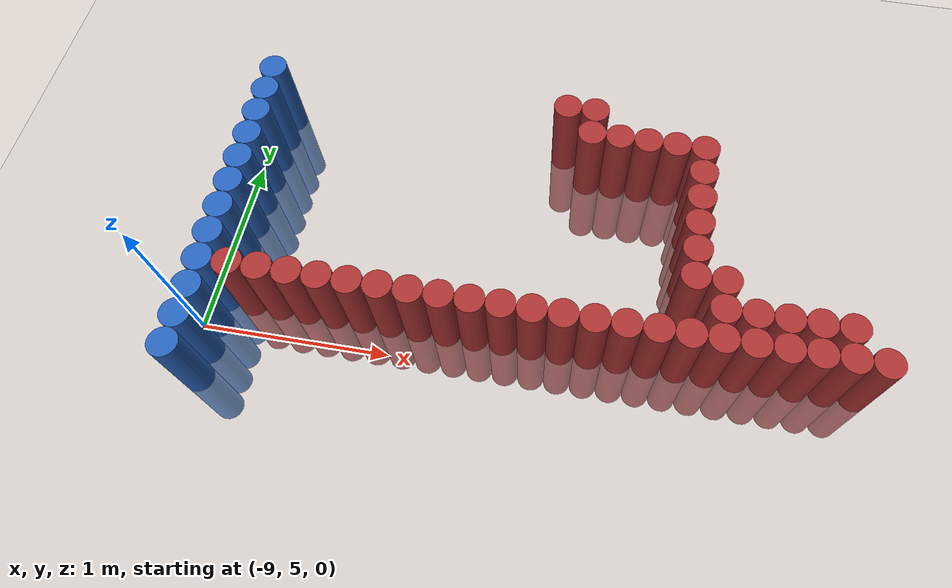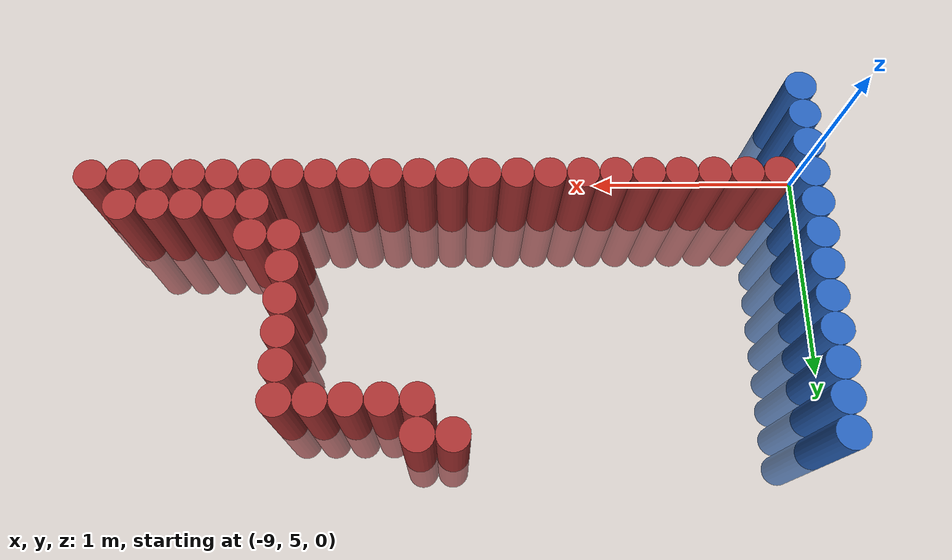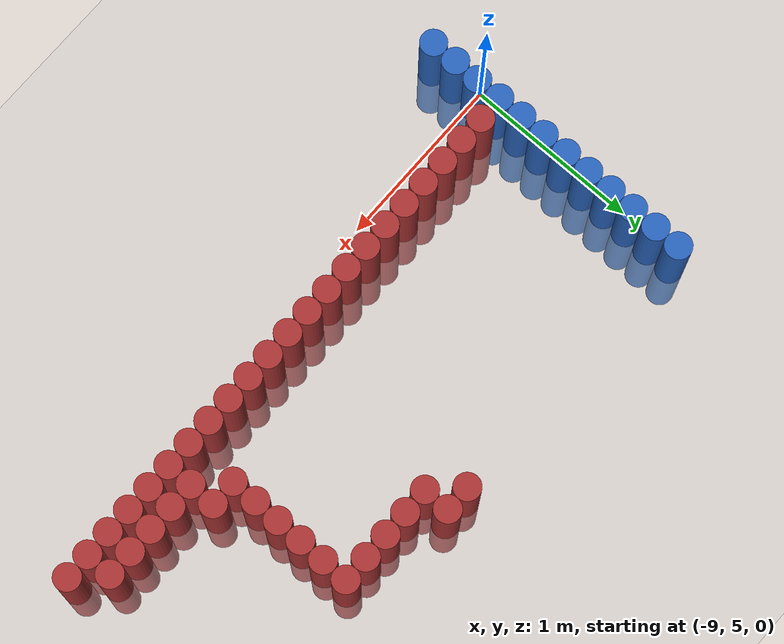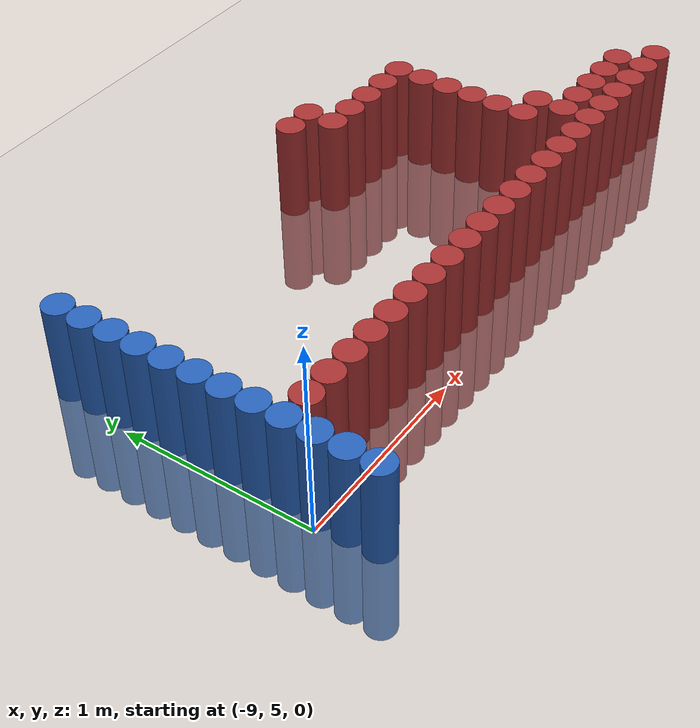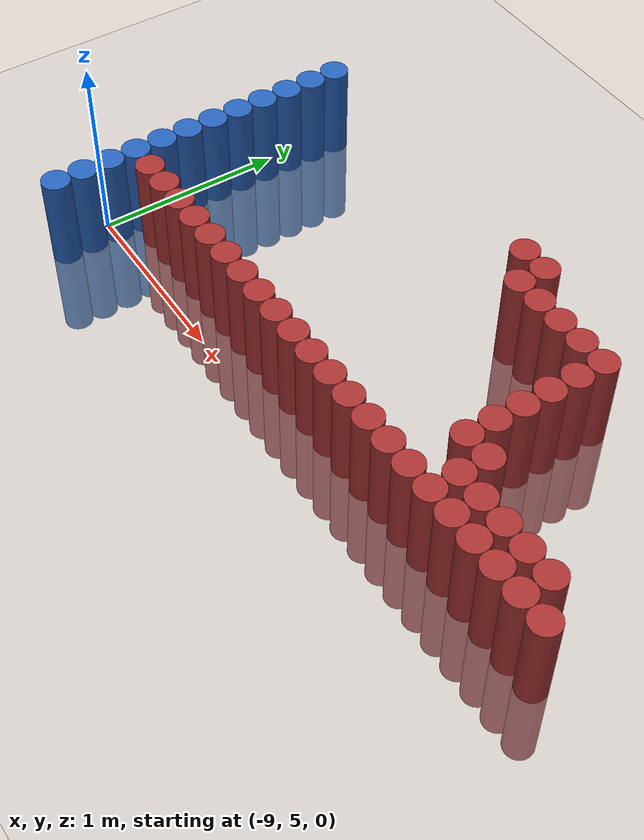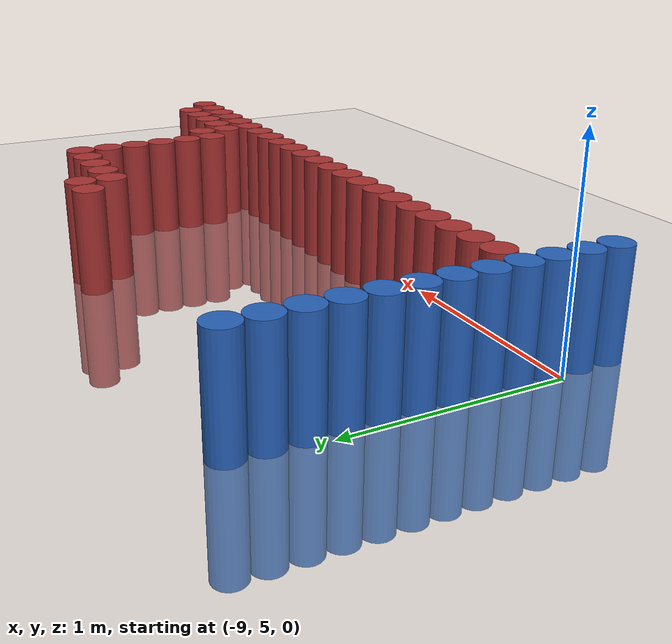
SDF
<sdf version="1.6">
 <world name="default">
  <model name="ground_plane">
   <static>1</static>
   <link name="link">
    <collision name="collision">
     <geometry><plane><normal>0 0 1</normal><size>100 100</size></plane></geometry>
     <surface><friction><ode><mu>100</mu><mu2>50</mu2></ode></friction></surface>
    </collision>
    <visual name="visual">
     <cast_shadows>0</cast_shadows>
     <geometry><plane><normal>0 0 1</normal><size>100 100</size></plane></geometry>
     <material>
      <script><uri>file://media/materials/scripts/gazebo.material</uri><name>Gazebo/Grey</name></script>
     </material>
    </visual>
   </link>
  </model>
  <model name="unit_cylinder_120">
   <static>1</static>
   <pose>-8.925000 4.725000 0.000000 0.000000 0.000000 0.000000</pose>
   <link name="link">
    <inertial>
     <mass>1</mass>
     <inertia><ixx>0.145833</ixx><ixy>0</ixy><ixz>0</ixz><iyy>0.145833</iyy><iyz>0</iyz><izz>0.125</izz></inertia>
    </inertial>
    <collision name="collision">
     <geometry><cylinder><radius>0.075000</radius><length>1</length></cylinder></geometry>
    </collision>
    <visual name="visual">
     <geometry><cylinder><radius>0.075000</radius><length>1</length></cylinder></geometry>
     <material>
      <ambient>0.152000 0.379000 0.720000 1</ambient>
      <diffuse>0.152000 0.379000 0.720000 1</diffuse>
     </material>
     <material>
      <script><name>Gazebo/Grey</name><uri>file://media/materials/scripts/gazebo.material</uri></script>
     </material>
    </visual>
   </link>
  </model>
  <model name="unit_cylinder_122">
   <static>1</static>
   <pose>-8.925000 4.875000 0.000000 0.000000 0.000000 0.000000</pose>
   <link name="link">
    <inertial>
     <mass>1</mass>
     <inertia><ixx>0.145833</ixx><ixy>0</ixy><ixz>0</ixz><iyy>0.145833</iyy><iyz>0</iyz><izz>0.125</izz></inertia>
    </inertial>
    <collision name="collision">
     <geometry><cylinder><radius>0.075000</radius><length>1</length></cylinder></geometry>
    </collision>
    <visual name="visual">
     <geometry><cylinder><radius>0.075000</radius><length>1</length></cylinder></geometry>
     <material>
      <ambient>0.152000 0.379000 0.720000 1</ambient>
      <diffuse>0.152000 0.379000 0.720000 1</diffuse>
     </material>
     <material>
      <script><name>Gazebo/Grey</name><uri>file://media/materials/scripts/gazebo.material</uri></script>
     </material>
    </visual>
   </link>
  </model>
  <model name="unit_cylinder_124">
   <static>1</static>
   <pose>-8.925000 5.025000 0.000000 0.000000 0.000000 0.000000</pose>
   <link name="link">
    <inertial>
     <mass>1</mass>
     <inertia><ixx>0.145833</ixx><ixy>0</ixy><ixz>0</ixz><iyy>0.145833</iyy><iyz>0</iyz><izz>0.125</izz></inertia>
    </inertial>
    <collision name="collision">
     <geometry><cylinder><radius>0.075000</radius><length>1</length></cylinder></geometry>
    </collision>
    <visual name="visual">
     <geometry><cylinder><radius>0.075000</radius><length>1</length></cylinder></geometry>
     <material>
      <ambient>0.152000 0.379000 0.720000 1</ambient>
      <diffuse>0.152000 0.379000 0.720000 1</diffuse>
     </material>
     <material>
      <script><name>Gazebo/Grey</name><uri>file://media/materials/scripts/gazebo.material</uri></script>
     </material>
    </visual>
   </link>
  </model>
  <model name="unit_cylinder_125">
   <static>1</static>
   <pose>-8.925000 5.175000 0.000000 0.000000 0.000000 0.000000</pose>
   <link name="link">
    <inertial>
     <mass>1</mass>
     <inertia><ixx>0.145833</ixx><ixy>0</ixy><ixz>0</ixz><iyy>0.145833</iyy><iyz>0</iyz><izz>0.125</izz></inertia>
    </inertial>
    <collision name="collision">
     <geometry><cylinder><radius>0.075000</radius><length>1</length></cylinder></geometry>
    </collision>
    <visual name="visual">
     <geometry><cylinder><radius>0.075000</radius><length>1</length></cylinder></geometry>
     <material>
      <ambient>0.152000 0.379000 0.720000 1</ambient>
      <diffuse>0.152000 0.379000 0.720000 1</diffuse>
     </material>
     <material>
      <script><name>Gazebo/Grey</name><uri>file://media/materials/scripts/gazebo.material</uri></script>
     </material>
    </visual>
   </link>
  </model>
  <model name="unit_cylinder_126">
   <static>1</static>
   <pose>-8.925000 5.325000 0.000000 0.000000 0.000000 0.000000</pose>
   <link name="link">
    <inertial>
     <mass>1</mass>
     <inertia><ixx>0.145833</ixx><ixy>0</ixy><ixz>0</ixz><iyy>0.145833</iyy><iyz>0</iyz><izz>0.125</izz></inertia>
    </inertial>
    <collision name="collision">
     <geometry><cylinder><radius>0.075000</radius><length>1</length></cylinder></geometry>
    </collision>
    <visual name="visual">
     <geometry><cylinder><radius>0.075000</radius><length>1</length></cylinder></geometry>
     <material>
      <ambient>0.152000 0.379000 0.720000 1</ambient>
      <diffuse>0.152000 0.379000 0.720000 1</diffuse>
     </material>
     <material>
      <script><name>Gazebo/Grey</name><uri>file://media/materials/scripts/gazebo.material</uri></script>
     </material>
    </visual>
   </link>
  </model>
  <model name="unit_cylinder_127">
   <static>1</static>
   <pose>-8.925000 5.475000 0.000000 0.000000 0.000000 0.000000</pose>
   <link name="link">
    <inertial>
     <mass>1</mass>
     <inertia><ixx>0.145833</ixx><ixy>0</ixy><ixz>0</ixz><iyy>0.145833</iyy><iyz>0</iyz><izz>0.125</izz></inertia>
    </inertial>
    <collision name="collision">
     <geometry><cylinder><radius>0.075000</radius><length>1</length></cylinder></geometry>
    </collision>
    <visual name="visual">
     <geometry><cylinder><radius>0.075000</radius><length>1</length></cylinder></geometry>
     <material>
      <ambient>0.152000 0.379000 0.720000 1</ambient>
      <diffuse>0.152000 0.379000 0.720000 1</diffuse>
     </material>
     <material>
      <script><name>Gazebo/Grey</name><uri>file://media/materials/scripts/gazebo.material</uri></script>
     </material>
    </visual>
   </link>
  </model>
  <model name="unit_cylinder_128">
   <static>1</static>
   <pose>-8.925000 5.625000 0.000000 0.000000 0.000000 0.000000</pose>
   <link name="link">
    <inertial>
     <mass>1</mass>
     <inertia><ixx>0.145833</ixx><ixy>0</ixy><ixz>0</ixz><iyy>0.145833</iyy><iyz>0</iyz><izz>0.125</izz></inertia>
    </inertial>
    <collision name="collision">
     <geometry><cylinder><radius>0.075000</radius><length>1</length></cylinder></geometry>
    </collision>
    <visual name="visual">
     <geometry><cylinder><radius>0.075000</radius><length>1</length></cylinder></geometry>
     <material>
      <ambient>0.152000 0.379000 0.720000 1</ambient>
      <diffuse>0.152000 0.379000 0.720000 1</diffuse>
     </material>
     <material>
      <script><name>Gazebo/Grey</name><uri>file://media/materials/scripts/gazebo.material</uri></script>
     </material>
    </visual>
   </link>
  </model>
  <model name="unit_cylinder_129">
   <static>1</static>
   <pose>-8.925000 5.775000 0.000000 0.000000 0.000000 0.000000</pose>
   <link name="link">
    <inertial>
     <mass>1</mass>
     <inertia><ixx>0.145833</ixx><ixy>0</ixy><ixz>0</ixz><iyy>0.145833</iyy><iyz>0</iyz><izz>0.125</izz></inertia>
    </inertial>
    <collision name="collision">
     <geometry><cylinder><radius>0.075000</radius><length>1</length></cylinder></geometry>
    </collision>
    <visual name="visual">
     <geometry><cylinder><radius>0.075000</radius><length>1</length></cylinder></geometry>
     <material>
      <ambient>0.152000 0.379000 0.720000 1</ambient>
      <diffuse>0.152000 0.379000 0.720000 1</diffuse>
     </material>
     <material>
      <script><name>Gazebo/Grey</name><uri>file://media/materials/scripts/gazebo.material</uri></script>
     </material>
    </visual>
   </link>
  </model>
  <model name="unit_cylinder_130">
   <static>1</static>
   <pose>-8.925000 5.925000 0.000000 0.000000 0.000000 0.000000</pose>
   <link name="link">
    <inertial>
     <mass>1</mass>
     <inertia><ixx>0.145833</ixx><ixy>0</ixy><ixz>0</ixz><iyy>0.145833</iyy><iyz>0</iyz><izz>0.125</izz></inertia>
    </inertial>
    <collision name="collision">
     <geometry><cylinder><radius>0.075000</radius><length>1</length></cylinder></geometry>
    </collision>
    <visual name="visual">
     <geometry><cylinder><radius>0.075000</radius><length>1</length></cylinder></geometry>
     <material>
      <ambient>0.152000 0.379000 0.720000 1</ambient>
      <diffuse>0.152000 0.379000 0.720000 1</diffuse>
     </material>
     <material>
      <script><name>Gazebo/Grey</name><uri>file://media/materials/scripts/gazebo.material</uri></script>
     </material>
    </visual>
   </link>
  </model>
  <model name="unit_cylinder_131">
   <static>1</static>
   <pose>-8.925000 6.075000 0.000000 0.000000 0.000000 0.000000</pose>
   <link name="link">
    <inertial>
     <mass>1</mass>
     <inertia><ixx>0.145833</ixx><ixy>0</ixy><ixz>0</ixz><iyy>0.145833</iyy><iyz>0</iyz><izz>0.125</izz></inertia>
    </inertial>
    <collision name="collision">
     <geometry><cylinder><radius>0.075000</radius><length>1</length></cylinder></geometry>
    </collision>
    <visual name="visual">
     <geometry><cylinder><radius>0.075000</radius><length>1</length></cylinder></geometry>
     <material>
      <ambient>0.152000 0.379000 0.720000 1</ambient>
      <diffuse>0.152000 0.379000 0.720000 1</diffuse>
     </material>
     <material>
      <script><name>Gazebo/Grey</name><uri>file://media/materials/scripts/gazebo.material</uri></script>
     </material>
    </visual>
   </link>
  </model>
  <model name="unit_cylinder_132">
   <static>1</static>
   <pose>-8.925000 6.225000 0.000000 0.000000 0.000000 0.000000</pose>
   <link name="link">
    <inertial>
     <mass>1</mass>
     <inertia><ixx>0.145833</ixx><ixy>0</ixy><ixz>0</ixz><iyy>0.145833</iyy><iyz>0</iyz><izz>0.125</izz></inertia>
    </inertial>
    <collision name="collision">
     <geometry><cylinder><radius>0.075000</radius><length>1</length></cylinder></geometry>
    </collision>
    <visual name="visual">
     <geometry><cylinder><radius>0.075000</radius><length>1</length></cylinder></geometry>
     <material>
      <ambient>0.152000 0.379000 0.720000 1</ambient>
      <diffuse>0.152000 0.379000 0.720000 1</diffuse>
     </material>
     <material>
      <script><name>Gazebo/Grey</name><uri>file://media/materials/scripts/gazebo.material</uri></script>
     </material>
    </visual>
   </link>
  </model>
  <model name="unit_cylinder_133">
   <static>1</static>
   <pose>-8.925000 6.375000 0.000000 0.000000 0.000000 0.000000</pose>
   <link name="link">
    <inertial>
     <mass>1</mass>
     <inertia><ixx>0.145833</ixx><ixy>0</ixy><ixz>0</ixz><iyy>0.145833</iyy><iyz>0</iyz><izz>0.125</izz></inertia>
    </inertial>
    <collision name="collision">
     <geometry><cylinder><radius>0.075000</radius><length>1</length></cylinder></geometry>
    </collision>
    <visual name="visual">
     <geometry><cylinder><radius>0.075000</radius><length>1</length></cylinder></geometry>
     <material>
      <ambient>0.152000 0.379000 0.720000 1</ambient>
      <diffuse>0.152000 0.379000 0.720000 1</diffuse>
     </material>
     <material>
      <script><name>Gazebo/Grey</name><uri>file://media/materials/scripts/gazebo.material</uri></script>
     </material>
    </visual>
   </link>
  </model>
  <model name="unit_cylinder_155">
   <static>1</static>
   <pose>-8.775000 5.175000 0.000000 0.000000 0.000000 0.000000</pose>
   <link name="link">
    <inertial>
     <mass>1</mass>
     <inertia><ixx>0.145833</ixx><ixy>0</ixy><ixz>0</ixz><iyy>0.145833</iyy><iyz>0</iyz><izz>0.125</izz></inertia>
    </inertial>
    <collision name="collision">
     <geometry><cylinder><radius>0.075000</radius><length>1</length></cylinder></geometry>
    </collision>
    <visual name="visual">
     <geometry><cylinder><radius>0.075000</radius><length>1</length></cylinder></geometry>
     <material>
      <ambient>0.648000 0.192000 0.192000 1</ambient>
      <diffuse>0.648000 0.192000 0.192000 1</diffuse>
     </material>
     <material>
      <script><name>Gazebo/Grey</name><uri>file://media/materials/scripts/gazebo.material</uri></script>
     </material>
    </visual>
   </link>
  </model>
  <model name="unit_cylinder_157">
   <static>1</static>
   <pose>-8.625000 5.175000 0.000000 0.000000 0.000000 0.000000</pose>
   <link name="link">
    <inertial>
     <mass>1</mass>
     <inertia><ixx>0.145833</ixx><ixy>0</ixy><ixz>0</ixz><iyy>0.145833</iyy><iyz>0</iyz><izz>0.125</izz></inertia>
    </inertial>
    <collision name="collision">
     <geometry><cylinder><radius>0.075000</radius><length>1</length></cylinder></geometry>
    </collision>
    <visual name="visual">
     <geometry><cylinder><radius>0.075000</radius><length>1</length></cylinder></geometry>
     <material>
      <ambient>0.648000 0.192000 0.192000 1</ambient>
      <diffuse>0.648000 0.192000 0.192000 1</diffuse>
     </material>
     <material>
      <script><name>Gazebo/Grey</name><uri>file://media/materials/scripts/gazebo.material</uri></script>
     </material>
    </visual>
   </link>
  </model>
  <model name="unit_cylinder_159">
   <static>1</static>
   <pose>-8.475000 5.175000 0.000000 0.000000 0.000000 0.000000</pose>
   <link name="link">
    <inertial>
     <mass>1</mass>
     <inertia><ixx>0.145833</ixx><ixy>0</ixy><ixz>0</ixz><iyy>0.145833</iyy><iyz>0</iyz><izz>0.125</izz></inertia>
    </inertial>
    <collision name="collision">
     <geometry><cylinder><radius>0.075000</radius><length>1</length></cylinder></geometry>
    </collision>
    <visual name="visual">
     <geometry><cylinder><radius>0.075000</radius><length>1</length></cylinder></geometry>
     <material>
      <ambient>0.648000 0.192000 0.192000 1</ambient>
      <diffuse>0.648000 0.192000 0.192000 1</diffuse>
     </material>
     <material>
      <script><name>Gazebo/Grey</name><uri>file://media/materials/scripts/gazebo.material</uri></script>
     </material>
    </visual>
   </link>
  </model>
  <model name="unit_cylinder_161">
   <static>1</static>
   <pose>-8.325000 5.175000 0.000000 0.000000 0.000000 0.000000</pose>
   <link name="link">
    <inertial>
     <mass>1</mass>
     <inertia><ixx>0.145833</ixx><ixy>0</ixy><ixz>0</ixz><iyy>0.145833</iyy><iyz>0</iyz><izz>0.125</izz></inertia>
    </inertial>
    <collision name="collision">
     <geometry><cylinder><radius>0.075000</radius><length>1</length></cylinder></geometry>
    </collision>
    <visual name="visual">
     <geometry><cylinder><radius>0.075000</radius><length>1</length></cylinder></geometry>
     <material>
      <ambient>0.648000 0.192000 0.192000 1</ambient>
      <diffuse>0.648000 0.192000 0.192000 1</diffuse>
     </material>
     <material>
      <script><name>Gazebo/Grey</name><uri>file://media/materials/scripts/gazebo.material</uri></script>
     </material>
    </visual>
   </link>
  </model>
  <model name="unit_cylinder_163">
   <static>1</static>
   <pose>-8.175000 5.175000 0.000000 0.000000 0.000000 0.000000</pose>
   <link name="link">
    <inertial>
     <mass>1</mass>
     <inertia><ixx>0.145833</ixx><ixy>0</ixy><ixz>0</ixz><iyy>0.145833</iyy><iyz>0</iyz><izz>0.125</izz></inertia>
    </inertial>
    <collision name="collision">
     <geometry><cylinder><radius>0.075000</radius><length>1</length></cylinder></geometry>
    </collision>
    <visual name="visual">
     <geometry><cylinder><radius>0.075000</radius><length>1</length></cylinder></geometry>
     <material>
      <ambient>0.648000 0.192000 0.192000 1</ambient>
      <diffuse>0.648000 0.192000 0.192000 1</diffuse>
     </material>
     <material>
      <script><name>Gazebo/Grey</name><uri>file://media/materials/scripts/gazebo.material</uri></script>
     </material>
    </visual>
   </link>
  </model>
  <model name="unit_cylinder_165">
   <static>1</static>
   <pose>-8.025000 5.175000 0.000000 0.000000 0.000000 0.000000</pose>
   <link name="link">
    <inertial>
     <mass>1</mass>
     <inertia><ixx>0.145833</ixx><ixy>0</ixy><ixz>0</ixz><iyy>0.145833</iyy><iyz>0</iyz><izz>0.125</izz></inertia>
    </inertial>
    <collision name="collision">
     <geometry><cylinder><radius>0.075000</radius><length>1</length></cylinder></geometry>
    </collision>
    <visual name="visual">
     <geometry><cylinder><radius>0.075000</radius><length>1</length></cylinder></geometry>
     <material>
      <ambient>0.648000 0.192000 0.192000 1</ambient>
      <diffuse>0.648000 0.192000 0.192000 1</diffuse>
     </material>
     <material>
      <script><name>Gazebo/Grey</name><uri>file://media/materials/scripts/gazebo.material</uri></script>
     </material>
    </visual>
   </link>
  </model>
  <model name="unit_cylinder_167">
   <static>1</static>
   <pose>-7.875000 5.175000 0.000000 0.000000 0.000000 0.000000</pose>
   <link name="link">
    <inertial>
     <mass>1</mass>
     <inertia><ixx>0.145833</ixx><ixy>0</ixy><ixz>0</ixz><iyy>0.145833</iyy><iyz>0</iyz><izz>0.125</izz></inertia>
    </inertial>
    <collision name="collision">
     <geometry><cylinder><radius>0.075000</radius><length>1</length></cylinder></geometry>
    </collision>
    <visual name="visual">
     <geometry><cylinder><radius>0.075000</radius><length>1</length></cylinder></geometry>
     <material>
      <ambient>0.648000 0.192000 0.192000 1</ambient>
      <diffuse>0.648000 0.192000 0.192000 1</diffuse>
     </material>
     <material>
      <script><name>Gazebo/Grey</name><uri>file://media/materials/scripts/gazebo.material</uri></script>
     </material>
    </visual>
   </link>
  </model>
  <model name="unit_cylinder_169">
   <static>1</static>
   <pose>-7.725000 5.175000 0.000000 0.000000 0.000000 0.000000</pose>
   <link name="link">
    <inertial>
     <mass>1</mass>
     <inertia><ixx>0.145833</ixx><ixy>0</ixy><ixz>0</ixz><iyy>0.145833</iyy><iyz>0</iyz><izz>0.125</izz></inertia>
    </inertial>
    <collision name="collision">
     <geometry><cylinder><radius>0.075000</radius><length>1</length></cylinder></geometry>
    </collision>
    <visual name="visual">
     <geometry><cylinder><radius>0.075000</radius><length>1</length></cylinder></geometry>
     <material>
      <ambient>0.648000 0.192000 0.192000 1</ambient>
      <diffuse>0.648000 0.192000 0.192000 1</diffuse>
     </material>
     <material>
      <script><name>Gazebo/Grey</name><uri>file://media/materials/scripts/gazebo.material</uri></script>
     </material>
    </visual>
   </link>
  </model>
  <model name="unit_cylinder_186">
   <static>1</static>
   <pose>-7.575000 5.175000 0.000000 0.000000 0.000000 0.000000</pose>
   <link name="link">
    <inertial>
     <mass>1</mass>
     <inertia><ixx>0.145833</ixx><ixy>0</ixy><ixz>0</ixz><iyy>0.145833</iyy><iyz>0</iyz><izz>0.125</izz></inertia>
    </inertial>
    <collision name="collision">
     <geometry><cylinder><radius>0.075000</radius><length>1</length></cylinder></geometry>
    </collision>
    <visual name="visual">
     <geometry><cylinder><radius>0.075000</radius><length>1</length></cylinder></geometry>
     <material>
      <ambient>0.648000 0.192000 0.192000 1</ambient>
      <diffuse>0.648000 0.192000 0.192000 1</diffuse>
     </material>
     <material>
      <script><name>Gazebo/Grey</name><uri>file://media/materials/scripts/gazebo.material</uri></script>
     </material>
    </visual>
   </link>
  </model>
  <model name="unit_cylinder_190">
   <static>1</static>
   <pose>-7.425000 5.175000 0.000000 0.000000 0.000000 0.000000</pose>
   <link name="link">
    <inertial>
     <mass>1</mass>
     <inertia><ixx>0.145833</ixx><ixy>0</ixy><ixz>0</ixz><iyy>0.145833</iyy><iyz>0</iyz><izz>0.125</izz></inertia>
    </inertial>
    <collision name="collision">
     <geometry><cylinder><radius>0.075000</radius><length>1</length></cylinder></geometry>
    </collision>
    <visual name="visual">
     <geometry><cylinder><radius>0.075000</radius><length>1</length></cylinder></geometry>
     <material>
      <ambient>0.648000 0.192000 0.192000 1</ambient>
      <diffuse>0.648000 0.192000 0.192000 1</diffuse>
     </material>
     <material>
      <script><name>Gazebo/Grey</name><uri>file://media/materials/scripts/gazebo.material</uri></script>
     </material>
    </visual>
   </link>
  </model>
  <model name="unit_cylinder_193">
   <static>1</static>
   <pose>-7.275000 5.175000 0.000000 0.000000 0.000000 0.000000</pose>
   <link name="link">
    <inertial>
     <mass>1</mass>
     <inertia><ixx>0.145833</ixx><ixy>0</ixy><ixz>0</ixz><iyy>0.145833</iyy><iyz>0</iyz><izz>0.125</izz></inertia>
    </inertial>
    <collision name="collision">
     <geometry><cylinder><radius>0.075000</radius><length>1</length></cylinder></geometry>
    </collision>
    <visual name="visual">
     <geometry><cylinder><radius>0.075000</radius><length>1</length></cylinder></geometry>
     <material>
      <ambient>0.648000 0.192000 0.192000 1</ambient>
      <diffuse>0.648000 0.192000 0.192000 1</diffuse>
     </material>
     <material>
      <script><name>Gazebo/Grey</name><uri>file://media/materials/scripts/gazebo.material</uri></script>
     </material>
    </visual>
   </link>
  </model>
  <model name="unit_cylinder_194">
   <static>1</static>
   <pose>-7.275000 6.375000 0.000000 0.000000 0.000000 0.000000</pose>
   <link name="link">
    <inertial>
     <mass>1</mass>
     <inertia><ixx>0.145833</ixx><ixy>0</ixy><ixz>0</ixz><iyy>0.145833</iyy><iyz>0</iyz><izz>0.125</izz></inertia>
    </inertial>
    <collision name="collision">
     <geometry><cylinder><radius>0.075000</radius><length>1</length></cylinder></geometry>
    </collision>
    <visual name="visual">
     <geometry><cylinder><radius>0.075000</radius><length>1</length></cylinder></geometry>
     <material>
      <ambient>0.648000 0.192000 0.192000 1</ambient>
      <diffuse>0.648000 0.192000 0.192000 1</diffuse>
     </material>
     <material>
      <script><name>Gazebo/Grey</name><uri>file://media/materials/scripts/gazebo.material</uri></script>
     </material>
    </visual>
   </link>
  </model>
  <model name="unit_cylinder_198">
   <static>1</static>
   <pose>-7.125000 5.175000 0.000000 0.000000 0.000000 0.000000</pose>
   <link name="link">
    <inertial>
     <mass>1</mass>
     <inertia><ixx>0.145833</ixx><ixy>0</ixy><ixz>0</ixz><iyy>0.145833</iyy><iyz>0</iyz><izz>0.125</izz></inertia>
    </inertial>
    <collision name="collision">
     <geometry><cylinder><radius>0.075000</radius><length>1</length></cylinder></geometry>
    </collision>
    <visual name="visual">
     <geometry><cylinder><radius>0.075000</radius><length>1</length></cylinder></geometry>
     <material>
      <ambient>0.648000 0.192000 0.192000 1</ambient>
      <diffuse>0.648000 0.192000 0.192000 1</diffuse>
     </material>
     <material>
      <script><name>Gazebo/Grey</name><uri>file://media/materials/scripts/gazebo.material</uri></script>
     </material>
    </visual>
   </link>
  </model>
  <model name="unit_cylinder_199">
   <static>1</static>
   <pose>-7.125000 6.225000 0.000000 0.000000 0.000000 0.000000</pose>
   <link name="link">
    <inertial>
     <mass>1</mass>
     <inertia><ixx>0.145833</ixx><ixy>0</ixy><ixz>0</ixz><iyy>0.145833</iyy><iyz>0</iyz><izz>0.125</izz></inertia>
    </inertial>
    <collision name="collision">
     <geometry><cylinder><radius>0.075000</radius><length>1</length></cylinder></geometry>
    </collision>
    <visual name="visual">
     <geometry><cylinder><radius>0.075000</radius><length>1</length></cylinder></geometry>
     <material>
      <ambient>0.648000 0.192000 0.192000 1</ambient>
      <diffuse>0.648000 0.192000 0.192000 1</diffuse>
     </material>
     <material>
      <script><name>Gazebo/Grey</name><uri>file://media/materials/scripts/gazebo.material</uri></script>
     </material>
    </visual>
   </link>
  </model>
  <model name="unit_cylinder_200">
   <static>1</static>
   <pose>-7.125000 6.375000 0.000000 0.000000 0.000000 0.000000</pose>
   <link name="link">
    <inertial>
     <mass>1</mass>
     <inertia><ixx>0.145833</ixx><ixy>0</ixy><ixz>0</ixz><iyy>0.145833</iyy><iyz>0</iyz><izz>0.125</izz></inertia>
    </inertial>
    <collision name="collision">
     <geometry><cylinder><radius>0.075000</radius><length>1</length></cylinder></geometry>
    </collision>
    <visual name="visual">
     <geometry><cylinder><radius>0.075000</radius><length>1</length></cylinder></geometry>
     <material>
      <ambient>0.648000 0.192000 0.192000 1</ambient>
      <diffuse>0.648000 0.192000 0.192000 1</diffuse>
     </material>
     <material>
      <script><name>Gazebo/Grey</name><uri>file://media/materials/scripts/gazebo.material</uri></script>
     </material>
    </visual>
   </link>
  </model>
  <model name="unit_cylinder_201">
   <static>1</static>
   <pose>-6.975000 5.175000 0.000000 0.000000 0.000000 0.000000</pose>
   <link name="link">
    <inertial>
     <mass>1</mass>
     <inertia><ixx>0.145833</ixx><ixy>0</ixy><ixz>0</ixz><iyy>0.145833</iyy><iyz>0</iyz><izz>0.125</izz></inertia>
    </inertial>
    <collision name="collision">
     <geometry><cylinder><radius>0.075000</radius><length>1</length></cylinder></geometry>
    </collision>
    <visual name="visual">
     <geometry><cylinder><radius>0.075000</radius><length>1</length></cylinder></geometry>
     <material>
      <ambient>0.648000 0.192000 0.192000 1</ambient>
      <diffuse>0.648000 0.192000 0.192000 1</diffuse>
     </material>
     <material>
      <script><name>Gazebo/Grey</name><uri>file://media/materials/scripts/gazebo.material</uri></script>
     </material>
    </visual>
   </link>
  </model>
  <model name="unit_cylinder_202">
   <static>1</static>
   <pose>-6.975000 6.225000 0.000000 0.000000 0.000000 0.000000</pose>
   <link name="link">
    <inertial>
     <mass>1</mass>
     <inertia><ixx>0.145833</ixx><ixy>0</ixy><ixz>0</ixz><iyy>0.145833</iyy><iyz>0</iyz><izz>0.125</izz></inertia>
    </inertial>
    <collision name="collision">
     <geometry><cylinder><radius>0.075000</radius><length>1</length></cylinder></geometry>
    </collision>
    <visual name="visual">
     <geometry><cylinder><radius>0.075000</radius><length>1</length></cylinder></geometry>
     <material>
      <ambient>0.648000 0.192000 0.192000 1</ambient>
      <diffuse>0.648000 0.192000 0.192000 1</diffuse>
     </material>
     <material>
      <script><name>Gazebo/Grey</name><uri>file://media/materials/scripts/gazebo.material</uri></script>
     </material>
    </visual>
   </link>
  </model>
  <model name="unit_cylinder_203">
   <static>1</static>
   <pose>-6.825000 5.175000 0.000000 0.000000 0.000000 0.000000</pose>
   <link name="link">
    <inertial>
     <mass>1</mass>
     <inertia><ixx>0.145833</ixx><ixy>0</ixy><ixz>0</ixz><iyy>0.145833</iyy><iyz>0</iyz><izz>0.125</izz></inertia>
    </inertial>
    <collision name="collision">
     <geometry><cylinder><radius>0.075000</radius><length>1</length></cylinder></geometry>
    </collision>
    <visual name="visual">
     <geometry><cylinder><radius>0.075000</radius><length>1</length></cylinder></geometry>
     <material>
      <ambient>0.648000 0.192000 0.192000 1</ambient>
      <diffuse>0.648000 0.192000 0.192000 1</diffuse>
     </material>
     <material>
      <script><name>Gazebo/Grey</name><uri>file://media/materials/scripts/gazebo.material</uri></script>
     </material>
    </visual>
   </link>
  </model>
  <model name="unit_cylinder_204">
   <static>1</static>
   <pose>-6.825000 6.225000 0.000000 0.000000 0.000000 0.000000</pose>
   <link name="link">
    <inertial>
     <mass>1</mass>
     <inertia><ixx>0.145833</ixx><ixy>0</ixy><ixz>0</ixz><iyy>0.145833</iyy><iyz>0</iyz><izz>0.125</izz></inertia>
    </inertial>
    <collision name="collision">
     <geometry><cylinder><radius>0.075000</radius><length>1</length></cylinder></geometry>
    </collision>
    <visual name="visual">
     <geometry><cylinder><radius>0.075000</radius><length>1</length></cylinder></geometry>
     <material>
      <ambient>0.648000 0.192000 0.192000 1</ambient>
      <diffuse>0.648000 0.192000 0.192000 1</diffuse>
     </material>
     <material>
      <script><name>Gazebo/Grey</name><uri>file://media/materials/scripts/gazebo.material</uri></script>
     </material>
    </visual>
   </link>
  </model>
  <model name="unit_cylinder_205">
   <static>1</static>
   <pose>-6.675000 5.175000 0.000000 0.000000 0.000000 0.000000</pose>
   <link name="link">
    <inertial>
     <mass>1</mass>
     <inertia><ixx>0.145833</ixx><ixy>0</ixy><ixz>0</ixz><iyy>0.145833</iyy><iyz>0</iyz><izz>0.125</izz></inertia>
    </inertial>
    <collision name="collision">
     <geometry><cylinder><radius>0.075000</radius><length>1</length></cylinder></geometry>
    </collision>
    <visual name="visual">
     <geometry><cylinder><radius>0.075000</radius><length>1</length></cylinder></geometry>
     <material>
      <ambient>0.648000 0.192000 0.192000 1</ambient>
      <diffuse>0.648000 0.192000 0.192000 1</diffuse>
     </material>
     <material>
      <script><name>Gazebo/Grey</name><uri>file://media/materials/scripts/gazebo.material</uri></script>
     </material>
    </visual>
   </link>
  </model>
  <model name="unit_cylinder_206">
   <static>1</static>
   <pose>-6.675000 6.225000 0.000000 0.000000 0.000000 0.000000</pose>
   <link name="link">
    <inertial>
     <mass>1</mass>
     <inertia><ixx>0.145833</ixx><ixy>0</ixy><ixz>0</ixz><iyy>0.145833</iyy><iyz>0</iyz><izz>0.125</izz></inertia>
    </inertial>
    <collision name="collision">
     <geometry><cylinder><radius>0.075000</radius><length>1</length></cylinder></geometry>
    </collision>
    <visual name="visual">
     <geometry><cylinder><radius>0.075000</radius><length>1</length></cylinder></geometry>
     <material>
      <ambient>0.648000 0.192000 0.192000 1</ambient>
      <diffuse>0.648000 0.192000 0.192000 1</diffuse>
     </material>
     <material>
      <script><name>Gazebo/Grey</name><uri>file://media/materials/scripts/gazebo.material</uri></script>
     </material>
    </visual>
   </link>
  </model>
  <model name="unit_cylinder_207">
   <static>1</static>
   <pose>-6.525000 5.175000 0.000000 0.000000 0.000000 0.000000</pose>
   <link name="link">
    <inertial>
     <mass>1</mass>
     <inertia><ixx>0.145833</ixx><ixy>0</ixy><ixz>0</ixz><iyy>0.145833</iyy><iyz>0</iyz><izz>0.125</izz></inertia>
    </inertial>
    <collision name="collision">
     <geometry><cylinder><radius>0.075000</radius><length>1</length></cylinder></geometry>
    </collision>
    <visual name="visual">
     <geometry><cylinder><radius>0.075000</radius><length>1</length></cylinder></geometry>
     <material>
      <ambient>0.648000 0.192000 0.192000 1</ambient>
      <diffuse>0.648000 0.192000 0.192000 1</diffuse>
     </material>
     <material>
      <script><name>Gazebo/Grey</name><uri>file://media/materials/scripts/gazebo.material</uri></script>
     </material>
    </visual>
   </link>
  </model>
  <model name="unit_cylinder_208">
   <static>1</static>
   <pose>-6.525000 5.475000 0.000000 0.000000 0.000000 0.000000</pose>
   <link name="link">
    <inertial>
     <mass>1</mass>
     <inertia><ixx>0.145833</ixx><ixy>0</ixy><ixz>0</ixz><iyy>0.145833</iyy><iyz>0</iyz><izz>0.125</izz></inertia>
    </inertial>
    <collision name="collision">
     <geometry><cylinder><radius>0.075000</radius><length>1</length></cylinder></geometry>
    </collision>
    <visual name="visual">
     <geometry><cylinder><radius>0.075000</radius><length>1</length></cylinder></geometry>
     <material>
      <ambient>0.648000 0.192000 0.192000 1</ambient>
      <diffuse>0.648000 0.192000 0.192000 1</diffuse>
     </material>
     <material>
      <script><name>Gazebo/Grey</name><uri>file://media/materials/scripts/gazebo.material</uri></script>
     </material>
    </visual>
   </link>
  </model>
  <model name="unit_cylinder_209">
   <static>1</static>
   <pose>-6.525000 5.625000 0.000000 0.000000 0.000000 0.000000</pose>
   <link name="link">
    <inertial>
     <mass>1</mass>
     <inertia><ixx>0.145833</ixx><ixy>0</ixy><ixz>0</ixz><iyy>0.145833</iyy><iyz>0</iyz><izz>0.125</izz></inertia>
    </inertial>
    <collision name="collision">
     <geometry><cylinder><radius>0.075000</radius><length>1</length></cylinder></geometry>
    </collision>
    <visual name="visual">
     <geometry><cylinder><radius>0.075000</radius><length>1</length></cylinder></geometry>
     <material>
      <ambient>0.648000 0.192000 0.192000 1</ambient>
      <diffuse>0.648000 0.192000 0.192000 1</diffuse>
     </material>
     <material>
      <script><name>Gazebo/Grey</name><uri>file://media/materials/scripts/gazebo.material</uri></script>
     </material>
    </visual>
   </link>
  </model>
  <model name="unit_cylinder_210">
   <static>1</static>
   <pose>-6.525000 5.775000 0.000000 0.000000 0.000000 0.000000</pose>
   <link name="link">
    <inertial>
     <mass>1</mass>
     <inertia><ixx>0.145833</ixx><ixy>0</ixy><ixz>0</ixz><iyy>0.145833</iyy><iyz>0</iyz><izz>0.125</izz></inertia>
    </inertial>
    <collision name="collision">
     <geometry><cylinder><radius>0.075000</radius><length>1</length></cylinder></geometry>
    </collision>
    <visual name="visual">
     <geometry><cylinder><radius>0.075000</radius><length>1</length></cylinder></geometry>
     <material>
      <ambient>0.648000 0.192000 0.192000 1</ambient>
      <diffuse>0.648000 0.192000 0.192000 1</diffuse>
     </material>
     <material>
      <script><name>Gazebo/Grey</name><uri>file://media/materials/scripts/gazebo.material</uri></script>
     </material>
    </visual>
   </link>
  </model>
  <model name="unit_cylinder_211">
   <static>1</static>
   <pose>-6.525000 5.925000 0.000000 0.000000 0.000000 0.000000</pose>
   <link name="link">
    <inertial>
     <mass>1</mass>
     <inertia><ixx>0.145833</ixx><ixy>0</ixy><ixz>0</ixz><iyy>0.145833</iyy><iyz>0</iyz><izz>0.125</izz></inertia>
    </inertial>
    <collision name="collision">
     <geometry><cylinder><radius>0.075000</radius><length>1</length></cylinder></geometry>
    </collision>
    <visual name="visual">
     <geometry><cylinder><radius>0.075000</radius><length>1</length></cylinder></geometry>
     <material>
      <ambient>0.648000 0.192000 0.192000 1</ambient>
      <diffuse>0.648000 0.192000 0.192000 1</diffuse>
     </material>
     <material>
      <script><name>Gazebo/Grey</name><uri>file://media/materials/scripts/gazebo.material</uri></script>
     </material>
    </visual>
   </link>
  </model>
  <model name="unit_cylinder_212">
   <static>1</static>
   <pose>-6.525000 6.075000 0.000000 0.000000 0.000000 0.000000</pose>
   <link name="link">
    <inertial>
     <mass>1</mass>
     <inertia><ixx>0.145833</ixx><ixy>0</ixy><ixz>0</ixz><iyy>0.145833</iyy><iyz>0</iyz><izz>0.125</izz></inertia>
    </inertial>
    <collision name="collision">
     <geometry><cylinder><radius>0.075000</radius><length>1</length></cylinder></geometry>
    </collision>
    <visual name="visual">
     <geometry><cylinder><radius>0.075000</radius><length>1</length></cylinder></geometry>
     <material>
      <ambient>0.648000 0.192000 0.192000 1</ambient>
      <diffuse>0.648000 0.192000 0.192000 1</diffuse>
     </material>
     <material>
      <script><name>Gazebo/Grey</name><uri>file://media/materials/scripts/gazebo.material</uri></script>
     </material>
    </visual>
   </link>
  </model>
  <model name="unit_cylinder_213">
   <static>1</static>
   <pose>-6.525000 6.225000 0.000000 0.000000 0.000000 0.000000</pose>
   <link name="link">
    <inertial>
     <mass>1</mass>
     <inertia><ixx>0.145833</ixx><ixy>0</ixy><ixz>0</ixz><iyy>0.145833</iyy><iyz>0</iyz><izz>0.125</izz></inertia>
    </inertial>
    <collision name="collision">
     <geometry><cylinder><radius>0.075000</radius><length>1</length></cylinder></geometry>
    </collision>
    <visual name="visual">
     <geometry><cylinder><radius>0.075000</radius><length>1</length></cylinder></geometry>
     <material>
      <ambient>0.648000 0.192000 0.192000 1</ambient>
      <diffuse>0.648000 0.192000 0.192000 1</diffuse>
     </material>
     <material>
      <script><name>Gazebo/Grey</name><uri>file://media/materials/scripts/gazebo.material</uri></script>
     </material>
    </visual>
   </link>
  </model>
  <model name="unit_cylinder_214">
   <static>1</static>
   <pose>-6.375000 5.175000 0.000000 0.000000 0.000000 0.000000</pose>
   <link name="link">
    <inertial>
     <mass>1</mass>
     <inertia><ixx>0.145833</ixx><ixy>0</ixy><ixz>0</ixz><iyy>0.145833</iyy><iyz>0</iyz><izz>0.125</izz></inertia>
    </inertial>
    <collision name="collision">
     <geometry><cylinder><radius>0.075000</radius><length>1</length></cylinder></geometry>
    </collision>
    <visual name="visual">
     <geometry><cylinder><radius>0.075000</radius><length>1</length></cylinder></geometry>
     <material>
      <ambient>0.648000 0.192000 0.192000 1</ambient>
      <diffuse>0.648000 0.192000 0.192000 1</diffuse>
     </material>
     <material>
      <script><name>Gazebo/Grey</name><uri>file://media/materials/scripts/gazebo.material</uri></script>
     </material>
    </visual>
   </link>
  </model>
  <model name="unit_cylinder_215">
   <static>1</static>
   <pose>-6.375000 5.325000 0.000000 0.000000 0.000000 0.000000</pose>
   <link name="link">
    <inertial>
     <mass>1</mass>
     <inertia><ixx>0.145833</ixx><ixy>0</ixy><ixz>0</ixz><iyy>0.145833</iyy><iyz>0</iyz><izz>0.125</izz></inertia>
    </inertial>
    <collision name="collision">
     <geometry><cylinder><radius>0.075000</radius><length>1</length></cylinder></geometry>
    </collision>
    <visual name="visual">
     <geometry><cylinder><radius>0.075000</radius><length>1</length></cylinder></geometry>
     <material>
      <ambient>0.648000 0.192000 0.192000 1</ambient>
      <diffuse>0.648000 0.192000 0.192000 1</diffuse>
     </material>
     <material>
      <script><name>Gazebo/Grey</name><uri>file://media/materials/scripts/gazebo.material</uri></script>
     </material>
    </visual>
   </link>
  </model>
  <model name="unit_cylinder_216">
   <static>1</static>
   <pose>-6.375000 5.475000 0.000000 0.000000 0.000000 0.000000</pose>
   <link name="link">
    <inertial>
     <mass>1</mass>
     <inertia><ixx>0.145833</ixx><ixy>0</ixy><ixz>0</ixz><iyy>0.145833</iyy><iyz>0</iyz><izz>0.125</izz></inertia>
    </inertial>
    <collision name="collision">
     <geometry><cylinder><radius>0.075000</radius><length>1</length></cylinder></geometry>
    </collision>
    <visual name="visual">
     <geometry><cylinder><radius>0.075000</radius><length>1</length></cylinder></geometry>
     <material>
      <ambient>0.648000 0.192000 0.192000 1</ambient>
      <diffuse>0.648000 0.192000 0.192000 1</diffuse>
     </material>
     <material>
      <script><name>Gazebo/Grey</name><uri>file://media/materials/scripts/gazebo.material</uri></script>
     </material>
    </visual>
   </link>
  </model>
  <model name="unit_cylinder_222">
   <static>1</static>
   <pose>-6.225000 5.175000 0.000000 0.000000 0.000000 0.000000</pose>
   <link name="link">
    <inertial>
     <mass>1</mass>
     <inertia><ixx>0.145833</ixx><ixy>0</ixy><ixz>0</ixz><iyy>0.145833</iyy><iyz>0</iyz><izz>0.125</izz></inertia>
    </inertial>
    <collision name="collision">
     <geometry><cylinder><radius>0.075000</radius><length>1</length></cylinder></geometry>
    </collision>
    <visual name="visual">
     <geometry><cylinder><radius>0.075000</radius><length>1</length></cylinder></geometry>
     <material>
      <ambient>0.648000 0.192000 0.192000 1</ambient>
      <diffuse>0.648000 0.192000 0.192000 1</diffuse>
     </material>
     <material>
      <script><name>Gazebo/Grey</name><uri>file://media/materials/scripts/gazebo.material</uri></script>
     </material>
    </visual>
   </link>
  </model>
  <model name="unit_cylinder_223">
   <static>1</static>
   <pose>-6.225000 5.325000 0.000000 0.000000 0.000000 0.000000</pose>
   <link name="link">
    <inertial>
     <mass>1</mass>
     <inertia><ixx>0.145833</ixx><ixy>0</ixy><ixz>0</ixz><iyy>0.145833</iyy><iyz>0</iyz><izz>0.125</izz></inertia>
    </inertial>
    <collision name="collision">
     <geometry><cylinder><radius>0.075000</radius><length>1</length></cylinder></geometry>
    </collision>
    <visual name="visual">
     <geometry><cylinder><radius>0.075000</radius><length>1</length></cylinder></geometry>
     <material>
      <ambient>0.648000 0.192000 0.192000 1</ambient>
      <diffuse>0.648000 0.192000 0.192000 1</diffuse>
     </material>
     <material>
      <script><name>Gazebo/Grey</name><uri>file://media/materials/scripts/gazebo.material</uri></script>
     </material>
    </visual>
   </link>
  </model>
  <model name="unit_cylinder_232">
   <static>1</static>
   <pose>-6.075000 5.175000 0.000000 0.000000 0.000000 0.000000</pose>
   <link name="link">
    <inertial>
     <mass>1</mass>
     <inertia><ixx>0.145833</ixx><ixy>0</ixy><ixz>0</ixz><iyy>0.145833</iyy><iyz>0</iyz><izz>0.125</izz></inertia>
    </inertial>
    <collision name="collision">
     <geometry><cylinder><radius>0.075000</radius><length>1</length></cylinder></geometry>
    </collision>
    <visual name="visual">
     <geometry><cylinder><radius>0.075000</radius><length>1</length></cylinder></geometry>
     <material>
      <ambient>0.648000 0.192000 0.192000 1</ambient>
      <diffuse>0.648000 0.192000 0.192000 1</diffuse>
     </material>
     <material>
      <script><name>Gazebo/Grey</name><uri>file://media/materials/scripts/gazebo.material</uri></script>
     </material>
    </visual>
   </link>
  </model>
  <model name="unit_cylinder_233">
   <static>1</static>
   <pose>-6.075000 5.325000 0.000000 0.000000 0.000000 0.000000</pose>
   <link name="link">
    <inertial>
     <mass>1</mass>
     <inertia><ixx>0.145833</ixx><ixy>0</ixy><ixz>0</ixz><iyy>0.145833</iyy><iyz>0</iyz><izz>0.125</izz></inertia>
    </inertial>
    <collision name="collision">
     <geometry><cylinder><radius>0.075000</radius><length>1</length></cylinder></geometry>
    </collision>
    <visual name="visual">
     <geometry><cylinder><radius>0.075000</radius><length>1</length></cylinder></geometry>
     <material>
      <ambient>0.648000 0.192000 0.192000 1</ambient>
      <diffuse>0.648000 0.192000 0.192000 1</diffuse>
     </material>
     <material>
      <script><name>Gazebo/Grey</name><uri>file://media/materials/scripts/gazebo.material</uri></script>
     </material>
    </visual>
   </link>
  </model>
  <model name="unit_cylinder_240">
   <static>1</static>
   <pose>-5.925000 5.175000 0.000000 0.000000 0.000000 0.000000</pose>
   <link name="link">
    <inertial>
     <mass>1</mass>
     <inertia><ixx>0.145833</ixx><ixy>0</ixy><ixz>0</ixz><iyy>0.145833</iyy><iyz>0</iyz><izz>0.125</izz></inertia>
    </inertial>
    <collision name="collision">
     <geometry><cylinder><radius>0.075000</radius><length>1</length></cylinder></geometry>
    </collision>
    <visual name="visual">
     <geometry><cylinder><radius>0.075000</radius><length>1</length></cylinder></geometry>
     <material>
      <ambient>0.648000 0.192000 0.192000 1</ambient>
      <diffuse>0.648000 0.192000 0.192000 1</diffuse>
     </material>
     <material>
      <script><name>Gazebo/Grey</name><uri>file://media/materials/scripts/gazebo.material</uri></script>
     </material>
    </visual>
   </link>
  </model>
  <model name="unit_cylinder_241">
   <static>1</static>
   <pose>-5.925000 5.325000 0.000000 0.000000 0.000000 0.000000</pose>
   <link name="link">
    <inertial>
     <mass>1</mass>
     <inertia><ixx>0.145833</ixx><ixy>0</ixy><ixz>0</ixz><iyy>0.145833</iyy><iyz>0</iyz><izz>0.125</izz></inertia>
    </inertial>
    <collision name="collision">
     <geometry><cylinder><radius>0.075000</radius><length>1</length></cylinder></geometry>
    </collision>
    <visual name="visual">
     <geometry><cylinder><radius>0.075000</radius><length>1</length></cylinder></geometry>
     <material>
      <ambient>0.648000 0.192000 0.192000 1</ambient>
      <diffuse>0.648000 0.192000 0.192000 1</diffuse>
     </material>
     <material>
      <script><name>Gazebo/Grey</name><uri>file://media/materials/scripts/gazebo.material</uri></script>
     </material>
    </visual>
   </link>
  </model>
  <model name="unit_cylinder_250">
   <static>1</static>
   <pose>-5.775000 5.175000 0.000000 0.000000 0.000000 0.000000</pose>
   <link name="link">
    <inertial>
     <mass>1</mass>
     <inertia><ixx>0.145833</ixx><ixy>0</ixy><ixz>0</ixz><iyy>0.145833</iyy><iyz>0</iyz><izz>0.125</izz></inertia>
    </inertial>
    <collision name="collision">
     <geometry><cylinder><radius>0.075000</radius><length>1</length></cylinder></geometry>
    </collision>
    <visual name="visual">
     <geometry><cylinder><radius>0.075000</radius><length>1</length></cylinder></geometry>
     <material>
      <ambient>0.648000 0.192000 0.192000 1</ambient>
      <diffuse>0.648000 0.192000 0.192000 1</diffuse>
     </material>
     <material>
      <script><name>Gazebo/Grey</name><uri>file://media/materials/scripts/gazebo.material</uri></script>
     </material>
    </visual>
   </link>
  </model>
  <model name="unit_cylinder_251">
   <static>1</static>
   <pose>-5.775000 5.325000 0.000000 0.000000 0.000000 0.000000</pose>
   <link name="link">
    <inertial>
     <mass>1</mass>
     <inertia><ixx>0.145833</ixx><ixy>0</ixy><ixz>0</ixz><iyy>0.145833</iyy><iyz>0</iyz><izz>0.125</izz></inertia>
    </inertial>
    <collision name="collision">
     <geometry><cylinder><radius>0.075000</radius><length>1</length></cylinder></geometry>
    </collision>
    <visual name="visual">
     <geometry><cylinder><radius>0.075000</radius><length>1</length></cylinder></geometry>
     <material>
      <ambient>0.648000 0.192000 0.192000 1</ambient>
      <diffuse>0.648000 0.192000 0.192000 1</diffuse>
     </material>
     <material>
      <script><name>Gazebo/Grey</name><uri>file://media/materials/scripts/gazebo.material</uri></script>
     </material>
    </visual>
   </link>
  </model>
  <model name="unit_cylinder_263">
   <static>1</static>
   <pose>-5.625000 5.175000 0.000000 0.000000 0.000000 0.000000</pose>
   <link name="link">
    <inertial>
     <mass>1</mass>
     <inertia><ixx>0.145833</ixx><ixy>0</ixy><ixz>0</ixz><iyy>0.145833</iyy><iyz>0</iyz><izz>0.125</izz></inertia>
    </inertial>
    <collision name="collision">
     <geometry><cylinder><radius>0.075000</radius><length>1</length></cylinder></geometry>
    </collision>
    <visual name="visual">
     <geometry><cylinder><radius>0.075000</radius><length>1</length></cylinder></geometry>
     <material>
      <ambient>0.648000 0.192000 0.192000 1</ambient>
      <diffuse>0.648000 0.192000 0.192000 1</diffuse>
     </material>
     <material>
      <script><name>Gazebo/Grey</name><uri>file://media/materials/scripts/gazebo.material</uri></script>
     </material>
    </visual>
   </link>
  </model>
 </world>
</sdf>
